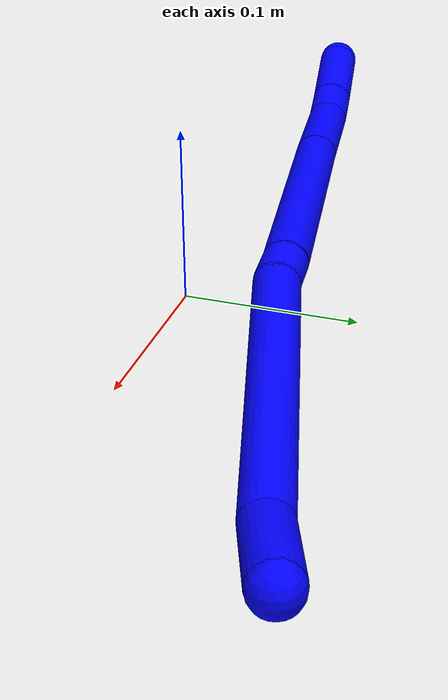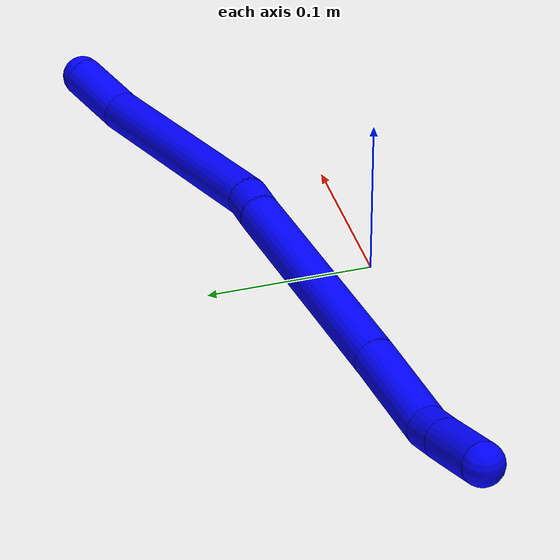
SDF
<sdf version="1.7">
 <world name="default">
  <plugin name="TubeGeneratorPlugin" filename="libtube_generator_plugin.so"/>
  <model name="photoneo_s_sensor">
   <static>1</static>
   <pose>0 0 2 1.57079 1.57079 3.14159</pose>
   <link name="link">
    <inertial><mass>0.1</mass></inertial>
    <sensor name="sensor" type="depth">
     <update_rate>30</update_rate>
     <camera>
      <horizontal_fov>1.22</horizontal_fov>
      <image><width>1920</width><height>1200</height><format>B8G8R8</format></image>
      <clip><near>0.1</near><far>4</far></clip>
      <depth_camera><output>points</output></depth_camera>
     </camera>
     <plugin name="camera_plugin" filename="libgazebo_ros_depth_camera.so">
      <baseline>0.2</baseline>
      <alwaysOn>1</alwaysOn>
      <updateRate>0.0</updateRate>
      <cameraName>camera_ir</cameraName>
      <imageTopicName>/camera/color/image_raw</imageTopicName>
      <cameraInfoTopicName>/camera/color/camera_info</cameraInfoTopicName>
      <depthImageTopicName>/camera/depth/image_raw</depthImageTopicName>
      <depthImageCameraInfoTopicName>/camera/depth/camera_info</depthImageCameraInfoTopicName>
      <pointCloudTopicName>/camera/depth/points</pointCloudTopicName>
      <frameName>fr_optical</frameName>
      <pointCloudCutoff>0.1</pointCloudCutoff>
      <pointCloudCutoffMax>2.0</pointCloudCutoffMax>
      <distortionK1>0</distortionK1>
      <distortionK2>0</distortionK2>
      <distortionK3>0</distortionK3>
      <distortionT1>0</distortionT1>
      <distortionT2>0</distortionT2>
      <CxPrime>0</CxPrime>
      <Cx>0</Cx>
      <Cy>0</Cy>
      <focalLength>0</focalLength>
      <hackBaseline>0</hackBaseline>
     </plugin>
    </sensor>
   </link>
  </model>
  <gravity>0 0 -9.8</gravity>
  <magnetic_field>6e-06 2.3e-05 -4.2e-05</magnetic_field>
  <atmosphere type="adiabatic"/>
  <physics name="default_physics" default="0" type="ode">
   <max_step_size>0.003</max_step_size>
   <real_time_factor>1</real_time_factor>
   <real_time_update_rate>1000</real_time_update_rate>
   <max_contacts>10000</max_contacts>
   <ode>
    <solver>
     <type>quick</type>
     <iters>100</iters>
     <sor>1.3</sor>
     <use_dynamic_moi_rescaling>0</use_dynamic_moi_rescaling>
    </solver>
    <constraints>
     <contact_max_correcting_vel>0</contact_max_correcting_vel>
     <contact_surface_layer>0.001</contact_surface_layer>
     <cfm>0</cfm>
     <erp>0.2</erp>
    </constraints>
   </ode>
  </physics>
  <scene><ambient>0.4 0.4 0.4 1</ambient><background>0.7 0.7 0.7 1</background><shadows>0</shadows></scene>
  <audio><device>default</device></audio>
  <spherical_coordinates>
   <surface_model>EARTH_WGS84</surface_model>
   <latitude_deg>0</latitude_deg>
   <longitude_deg>0</longitude_deg>
   <elevation>0</elevation>
   <heading_deg>0</heading_deg>
  </spherical_coordinates>
  <model name="bin">
   <static>1</static>
   <link name="bottom">
    <collision name="collision-bottom">
     <pose>0 0 -0.01 0 -0 0</pose>
     <geometry><box><size>0.8 0.6 0.02</size></box></geometry>
     <surface>
      <friction><ode><mu>100</mu><mu2>100</mu2></ode></friction>
      <contact><collide_bitmask>65535</collide_bitmask></contact>
     </surface>
    </collision>
   </link>
   <link name="west_wall">
    <collision name="collision-west_wall">
     <pose>-0.41 0 0.1 0 -0 0</pose>
     <geometry><box><size>0.02 0.6 0.2</size></box></geometry>
     <surface>
      <friction><ode><mu>100</mu><mu2>100</mu2></ode></friction>
      <contact><collide_bitmask>65535</collide_bitmask></contact>
     </surface>
    </collision>
   </link>
   <link name="east_wall">
    <collision name="collision-east_wall">
     <pose>0.41 0 0.1 0 -0 0</pose>
     <geometry><box><size>0.02 0.6 0.2</size></box></geometry>
     <surface>
      <friction><ode><mu>100</mu><mu2>100</mu2></ode></friction>
      <contact><collide_bitmask>65535</collide_bitmask></contact>
     </surface>
    </collision>
   </link>
   <link name="south_wall">
    <collision name="collision-south_wall">
     <pose>0 -0.31 0.1 0 -0 0</pose>
     <geometry><box><size>0.8 0.02 0.2</size></box></geometry>
     <surface>
      <friction><ode><mu>100</mu><mu2>100</mu2></ode></friction>
      <contact><collide_bitmask>65535</collide_bitmask></contact>
     </surface>
    </collision>
   </link>
   <link name="north_wall">
    <collision name="collision-north_wall">
     <pose>0 0.31 0.1 0 -0 0</pose>
     <geometry><box><size>0.8 0.02 0.2</size></box></geometry>
     <surface>
      <friction><ode><mu>100</mu><mu2>100</mu2></ode></friction>
      <contact><collide_bitmask>65535</collide_bitmask></contact>
     </surface>
    </collision>
   </link>
  </model>
  <model name="1">
   <static>0</static>
   <link name="1">
    <collision name="collision-cylinder-e_1_1_4">
     <pose>-0.019226 -0.007878 -0.002292 1.85388 -1.16746 -1.44335</pose>
     <geometry><cylinder><radius>0.0125</radius><length>0.041806</length></cylinder></geometry>
     <surface>
      <friction><ode><mu>1.16</mu><mu2>1.16</mu2><slip1>0</slip1><slip2>0</slip2></ode></friction>
      <contact><ode><kp>1e+06</kp><kd>1</kd><max_vel>0</max_vel><min_depth>0.001</min_depth></ode></contact>
     </surface>
    </collision>
    <visual name="visual-cylinder-e_1_1_4">
     <pose>-0.019226 -0.007878 -0.002292 1.85388 -1.16746 -1.44335</pose>
     <geometry><cylinder><radius>0.0125</radius><length>0.041806</length></cylinder></geometry>
     <material><ambient>0 0 1 1</ambient></material>
    </visual>
    <collision name="collision-cylinder-e_2_4_5">
     <pose>-0.112036 -0.035602 0.008598 0.984527 -1.25767 -0.743832</pose>
     <geometry><cylinder><radius>0.0125</radius><length>0.154691</length></cylinder></geometry>
     <surface>
      <friction><ode><mu>1.16</mu><mu2>1.16</mu2><slip1>0</slip1><slip2>0</slip2></ode></friction>
      <contact><ode><kp>1e+06</kp><kd>1</kd><max_vel>0</max_vel><min_depth>0.001</min_depth></ode></contact>
     </surface>
    </collision>
    <visual name="visual-cylinder-e_2_4_5">
     <pose>-0.112036 -0.035602 0.008598 0.984527 -1.25767 -0.743832</pose>
     <geometry><cylinder><radius>0.0125</radius><length>0.154691</length></cylinder></geometry>
     <material><ambient>0 0 1 1</ambient></material>
    </visual>
    <collision name="collision-cylinder-e_3_5_6">
     <pose>-0.195959 -0.056192 0.022545 0.771077 -1.46786 -0.701862</pose>
     <geometry><cylinder><radius>0.0125</radius><length>0.020786</length></cylinder></geometry>
     <surface>
      <friction><ode><mu>1.16</mu><mu2>1.16</mu2><slip1>0</slip1><slip2>0</slip2></ode></friction>
      <contact><ode><kp>1e+06</kp><kd>1</kd><max_vel>0</max_vel><min_depth>0.001</min_depth></ode></contact>
     </surface>
    </collision>
    <visual name="visual-cylinder-e_3_5_6">
     <pose>-0.195959 -0.056192 0.022545 0.771077 -1.46786 -0.701862</pose>
     <geometry><cylinder><radius>0.0125</radius><length>0.020786</length></cylinder></geometry>
     <material><ambient>0 0 1 1</ambient></material>
    </visual>
    <collision name="collision-cylinder-e_4_6_7">
     <pose>-0.280388 -0.068674 0.02325 1.57598 -1.41367 -1.4188</pose>
     <geometry><cylinder><radius>0.0125</radius><length>0.150029</length></cylinder></geometry>
     <surface>
      <friction><ode><mu>1.16</mu><mu2>1.16</mu2><slip1>0</slip1><slip2>0</slip2></ode></friction>
      <contact><ode><kp>1e+06</kp><kd>1</kd><max_vel>0</max_vel><min_depth>0.001</min_depth></ode></contact>
     </surface>
    </collision>
    <visual name="visual-cylinder-e_4_6_7">
     <pose>-0.280388 -0.068674 0.02325 1.57598 -1.41367 -1.4188</pose>
     <geometry><cylinder><radius>0.0125</radius><length>0.150029</length></cylinder></geometry>
     <material><ambient>0 0 1 1</ambient></material>
    </visual>
    <collision name="collision-cylinder-e_5_7_8">
     <pose>-0.386862 -0.085059 0.022837 1.64658 -1.42787 -1.50329</pose>
     <geometry><cylinder><radius>0.0125</radius><length>0.065437</length></cylinder></geometry>
     <surface>
      <friction><ode><mu>1.16</mu><mu2>1.16</mu2><slip1>0</slip1><slip2>0</slip2></ode></friction>
      <contact><ode><kp>1e+06</kp><kd>1</kd><max_vel>0</max_vel><min_depth>0.001</min_depth></ode></contact>
     </surface>
    </collision>
    <visual name="visual-cylinder-e_5_7_8">
     <pose>-0.386862 -0.085059 0.022837 1.64658 -1.42787 -1.50329</pose>
     <geometry><cylinder><radius>0.0125</radius><length>0.065437</length></cylinder></geometry>
     <material><ambient>0 0 1 1</ambient></material>
    </visual>
    <collision name="collision-cylinder-e_6_8_9">
     <pose>-0.430074 -0.09103 0.026116 0.349501 -1.22783 -0.24758</pose>
     <geometry><cylinder><radius>0.0125</radius><length>0.022993</length></cylinder></geometry>
     <surface>
      <friction><ode><mu>1.16</mu><mu2>1.16</mu2><slip1>0</slip1><slip2>0</slip2></ode></friction>
      <contact><ode><kp>1e+06</kp><kd>1</kd><max_vel>0</max_vel><min_depth>0.001</min_depth></ode></contact>
     </surface>
    </collision>
    <visual name="visual-cylinder-e_6_8_9">
     <pose>-0.430074 -0.09103 0.026116 0.349501 -1.22783 -0.24758</pose>
     <geometry><cylinder><radius>0.0125</radius><length>0.022993</length></cylinder></geometry>
     <material><ambient>0 0 1 1</ambient></material>
    </visual>
    <collision name="collision-cylinder-e_7_9_2">
     <pose>-0.461563 -0.095226 0.037133 0.370959 -1.20461 -0.256591</pose>
     <geometry><cylinder><radius>0.0125</radius><length>0.044258</length></cylinder></geometry>
     <surface>
      <friction><ode><mu>1.16</mu><mu2>1.16</mu2><slip1>0</slip1><slip2>0</slip2></ode></friction>
      <contact><ode><kp>1e+06</kp><kd>1</kd><max_vel>0</max_vel><min_depth>0.001</min_depth></ode></contact>
     </surface>
    </collision>
    <visual name="visual-cylinder-e_7_9_2">
     <pose>-0.461563 -0.095226 0.037133 0.370959 -1.20461 -0.256591</pose>
     <geometry><cylinder><radius>0.0125</radius><length>0.044258</length></cylinder></geometry>
     <material><ambient>0 0 1 1</ambient></material>
    </visual>
    <collision name="collision-sphere-2">
     <pose>-0.482225 -0.098099 0.044518 0 -0 0</pose>
     <geometry><sphere><radius>0.0125</radius></sphere></geometry>
     <surface>
      <friction><ode><mu>1.16</mu><mu2>1.16</mu2><slip1>0</slip1><slip2>0</slip2></ode></friction>
      <contact><ode><kp>1e+06</kp><kd>1</kd><max_vel>0</max_vel><min_depth>0.001</min_depth></ode></contact>
     </surface>
    </collision>
    <visual name="visual-sphere-2">
     <pose>-0.482225 -0.098099 0.044518 0 -0 0</pose>
     <geometry><sphere><radius>0.0125</radius></sphere></geometry>
     <material><ambient>0 0 1 1</ambient></material>
    </visual>
    <collision name="collision-sphere-9">
     <pose>-0.440901 -0.092354 0.029749 0 -0 0</pose>
     <geometry><sphere><radius>0.0125</radius></sphere></geometry>
     <surface>
      <friction><ode><mu>1.16</mu><mu2>1.16</mu2><slip1>0</slip1><slip2>0</slip2></ode></friction>
      <contact><ode><kp>1e+06</kp><kd>1</kd><max_vel>0</max_vel><min_depth>0.001</min_depth></ode></contact>
     </surface>
    </collision>
    <visual name="visual-sphere-9">
     <pose>-0.440901 -0.092354 0.029749 0 -0 0</pose>
     <geometry><sphere><radius>0.0125</radius></sphere></geometry>
     <material><ambient>0 0 1 1</ambient></material>
    </visual>
    <collision name="collision-sphere-4">
     <pose>-0.038451 -0.015755 -0.004583 0 -0 0</pose>
     <geometry><sphere><radius>0.0125</radius></sphere></geometry>
     <surface>
      <friction><ode><mu>1.16</mu><mu2>1.16</mu2><slip1>0</slip1><slip2>0</slip2></ode></friction>
      <contact><ode><kp>1e+06</kp><kd>1</kd><max_vel>0</max_vel><min_depth>0.001</min_depth></ode></contact>
     </surface>
    </collision>
    <visual name="visual-sphere-4">
     <pose>-0.038451 -0.015755 -0.004583 0 -0 0</pose>
     <geometry><sphere><radius>0.0125</radius></sphere></geometry>
     <material><ambient>0 0 1 1</ambient></material>
    </visual>
    <collision name="collision-sphere-1">
     <geometry><sphere><radius>0.0125</radius></sphere></geometry>
     <surface>
      <friction><ode><mu>1.16</mu><mu2>1.16</mu2><slip1>0</slip1><slip2>0</slip2></ode></friction>
      <contact><ode><kp>1e+06</kp><kd>1</kd><max_vel>0</max_vel><min_depth>0.001</min_depth></ode></contact>
     </surface>
    </collision>
    <visual name="visual-sphere-1">
     <geometry><sphere><radius>0.0125</radius></sphere></geometry>
     <material><ambient>0 0 1 1</ambient></material>
    </visual>
    <collision name="collision-sphere-8">
     <pose>-0.419247 -0.089706 0.022484 0 -0 0</pose>
     <geometry><sphere><radius>0.0125</radius></sphere></geometry>
     <surface>
      <friction><ode><mu>1.16</mu><mu2>1.16</mu2><slip1>0</slip1><slip2>0</slip2></ode></friction>
      <contact><ode><kp>1e+06</kp><kd>1</kd><max_vel>0</max_vel><min_depth>0.001</min_depth></ode></contact>
     </surface>
    </collision>
    <visual name="visual-sphere-8">
     <pose>-0.419247 -0.089706 0.022484 0 -0 0</pose>
     <geometry><sphere><radius>0.0125</radius></sphere></geometry>
     <material><ambient>0 0 1 1</ambient></material>
    </visual>
    <collision name="collision-sphere-5">
     <pose>-0.185621 -0.055448 0.021779 0 -0 0</pose>
     <geometry><sphere><radius>0.0125</radius></sphere></geometry>
     <surface>
      <friction><ode><mu>1.16</mu><mu2>1.16</mu2><slip1>0</slip1><slip2>0</slip2></ode></friction>
      <contact><ode><kp>1e+06</kp><kd>1</kd><max_vel>0</max_vel><min_depth>0.001</min_depth></ode></contact>
     </surface>
    </collision>
    <visual name="visual-sphere-5">
     <pose>-0.185621 -0.055448 0.021779 0 -0 0</pose>
     <geometry><sphere><radius>0.0125</radius></sphere></geometry>
     <material><ambient>0 0 1 1</ambient></material>
    </visual>
    <collision name="collision-sphere-6">
     <pose>-0.206297 -0.056936 0.023311 0 -0 0</pose>
     <geometry><sphere><radius>0.0125</radius></sphere></geometry>
     <surface>
      <friction><ode><mu>1.16</mu><mu2>1.16</mu2><slip1>0</slip1><slip2>0</slip2></ode></friction>
      <contact><ode><kp>1e+06</kp><kd>1</kd><max_vel>0</max_vel><min_depth>0.001</min_depth></ode></contact>
     </surface>
    </collision>
    <visual name="visual-sphere-6">
     <pose>-0.206297 -0.056936 0.023311 0 -0 0</pose>
     <geometry><sphere><radius>0.0125</radius></sphere></geometry>
     <material><ambient>0 0 1 1</ambient></material>
    </visual>
    <collision name="collision-sphere-7">
     <pose>-0.354478 -0.080412 0.023189 0 -0 0</pose>
     <geometry><sphere><radius>0.0125</radius></sphere></geometry>
     <surface>
      <friction><ode><mu>1.16</mu><mu2>1.16</mu2><slip1>0</slip1><slip2>0</slip2></ode></friction>
      <contact><ode><kp>1e+06</kp><kd>1</kd><max_vel>0</max_vel><min_depth>0.001</min_depth></ode></contact>
     </surface>
    </collision>
    <visual name="visual-sphere-7">
     <pose>-0.354478 -0.080412 0.023189 0 -0 0</pose>
     <geometry><sphere><radius>0.0125</radius></sphere></geometry>
     <material><ambient>0 0 1 1</ambient></material>
    </visual>
    <inertial>
     <pose>-0.239812 -0.058363 0.017859 0 -0 0</pose>
     <mass>0.5</mass>
     <inertia>
      <ixx>-7.3e-05</ixx>
      <ixy>0</ixy>
      <ixz>0</ixz>
      <iyy>0.000496</iyy>
      <iyz>0</iyz>
      <izz>0.000765</izz>
     </inertia>
    </inertial>
   </link>
   <pose>0.222293 0.120405 0.016771 0.025495 0.00787 -0.00232</pose>
  </model>
 </world>
</sdf>
